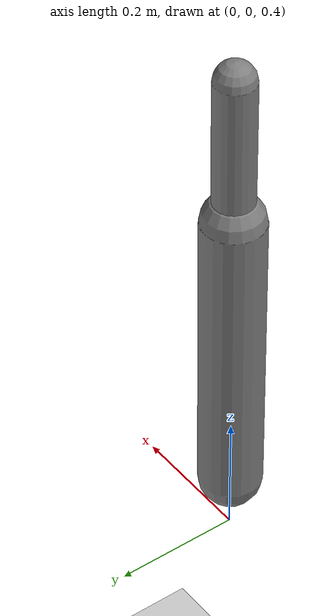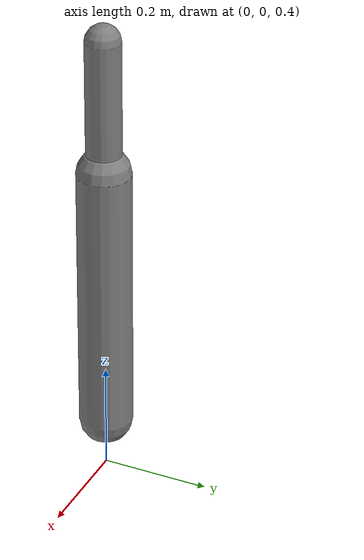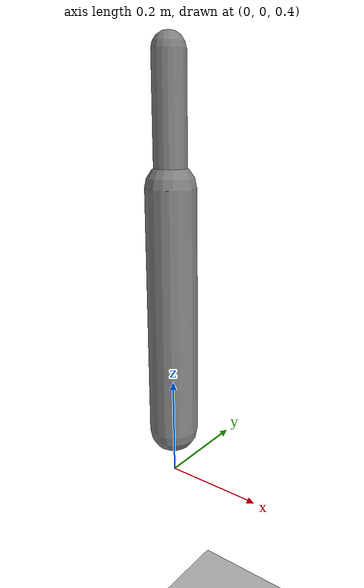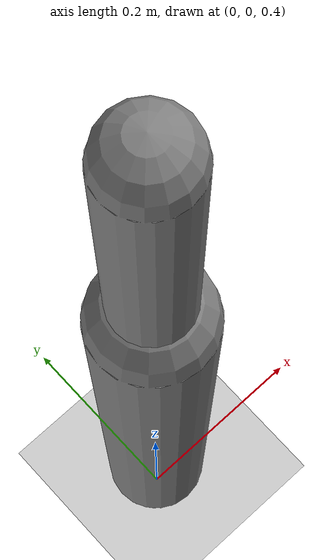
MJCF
<?xml version='1.0' encoding='UTF-8'?>
<mujoco model="RobotModel">
  <option gravity="0 0 -9.81" timestep="0.002" solver="CG" iterations="500" integrator="Euler"/>
  <worldbody>
    <geom name="Floor" type="plane" size="10 10 0.1" pos="0 0 0" rgba="0.8 0.8 0.8 1"/>
    <body name="Limb0" pos="0 0 0.5">
      <geom type="capsule" fromto="0 0 0 0 0 0.5" size="0.05" density="1000" contype="0" conaffinity="0"/>
      <body name="Limb0_e438071a" pos="0 0 0.5">
        <geom type="capsule" fromto="0 0 0 0 0 0.24717603553587453" size="0.0324808675699853" density="800" contype="0" conaffinity="0"/>
        <joint name="Joint_Limb0_Limb0_e438071a_0" type="hinge" axis="0 1 0" range="-60 60"/>
      </body>
    </body>
  </worldbody>
  <actuator>
    <position name="position_Actuator_Joint_Limb0_Limb0_e438071a_0" joint="Joint_Limb0_Limb0_e438071a_0" gear="1.0"/>
  </actuator>
</mujoco>
